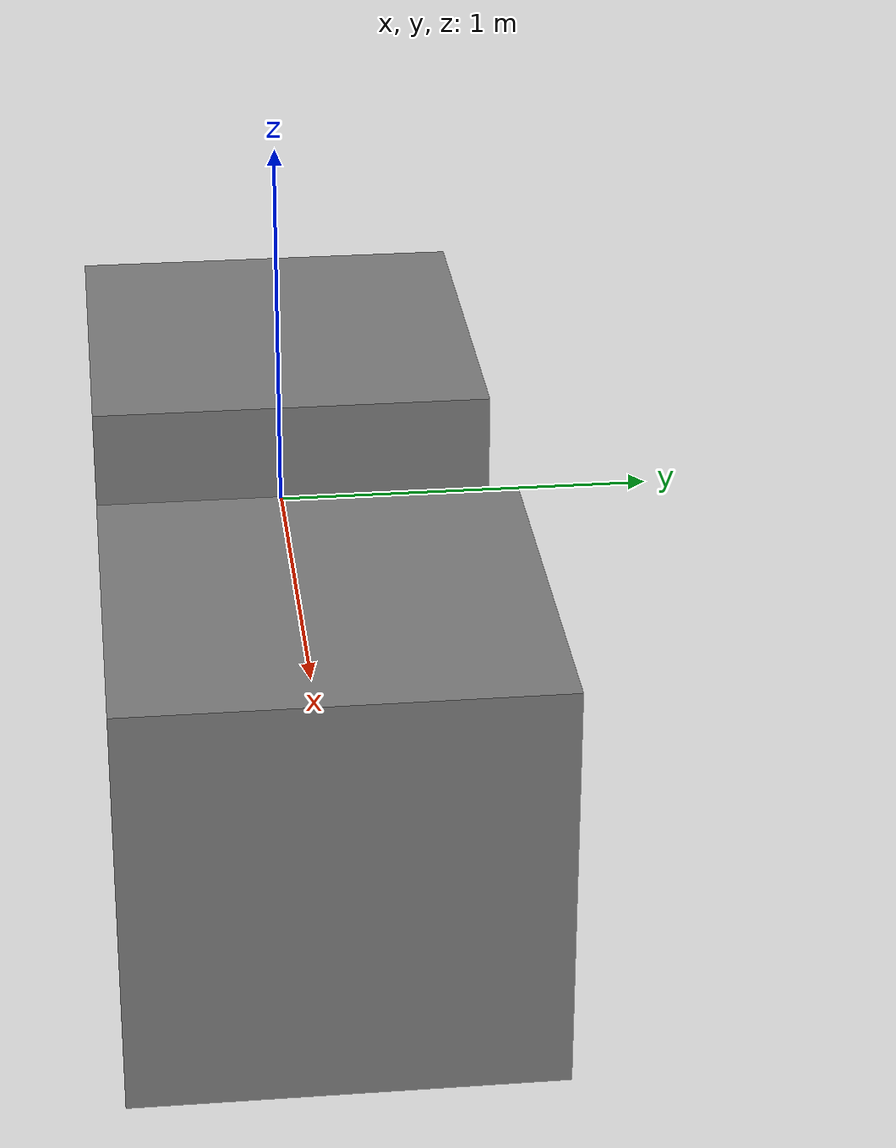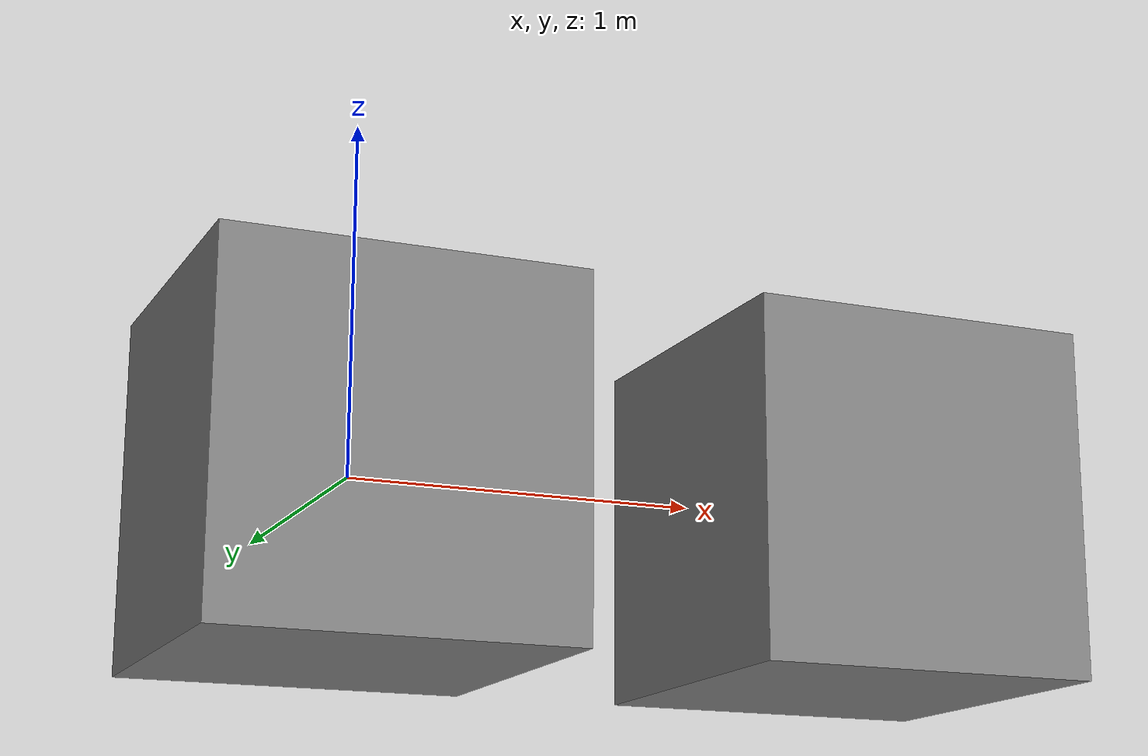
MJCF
<mujoco model="box_box_sep">
            <option gravity="0 0 0" timestep="0.001"/>
            <worldbody>
                <body name="box1" pos="0 0 0">
                    <joint type="free"/>
                    <geom type="box" size="0.5 0.5 0.5"/>
                </body>
                <body name="box2" pos="1.5 0 0">
                    <joint type="free"/>
                    <geom type="box" size="0.5 0.5 0.5"/>
                </body>
            </worldbody>
        </mujoco>
